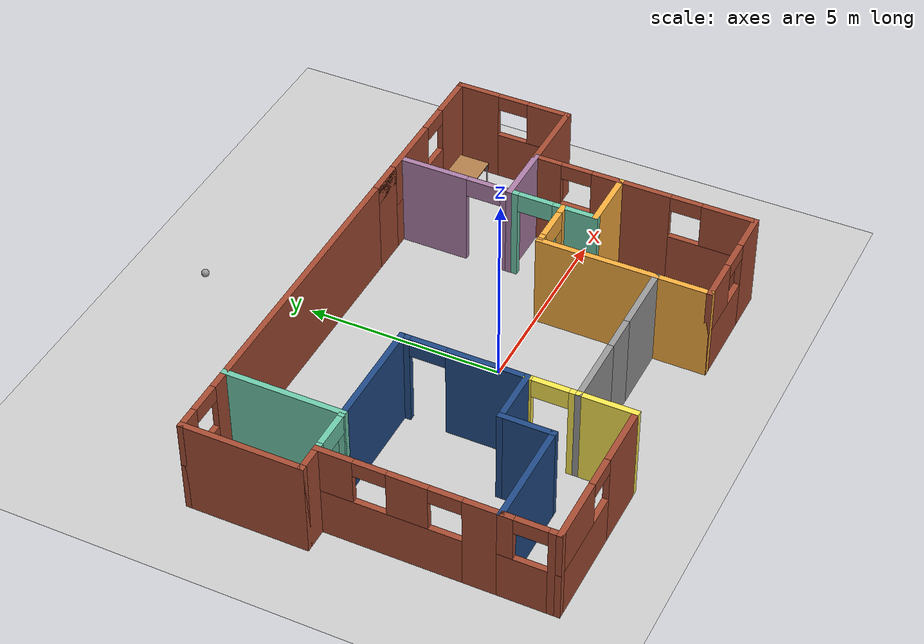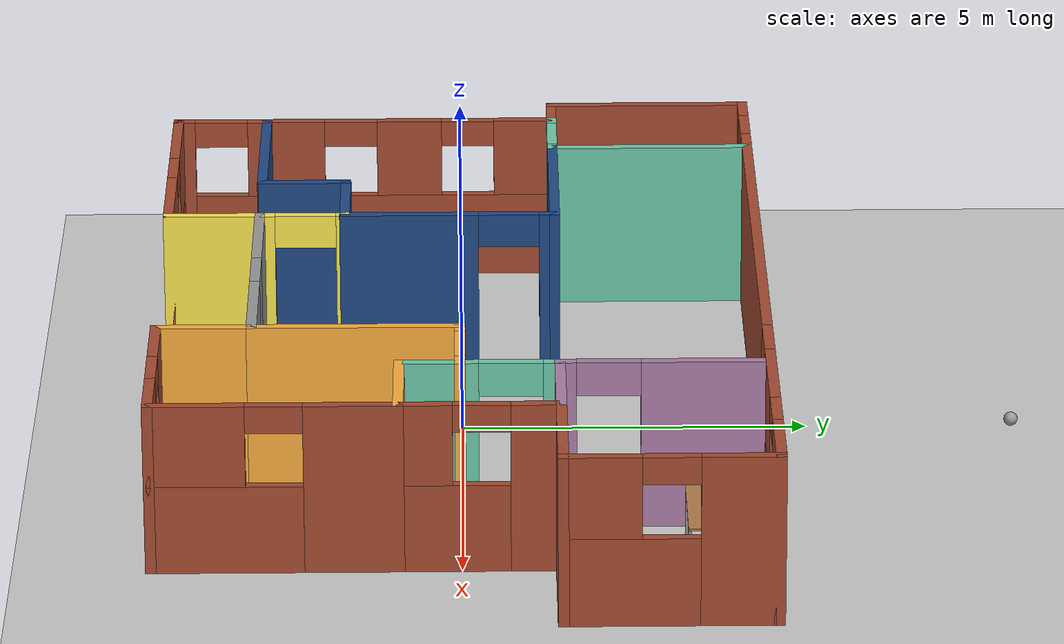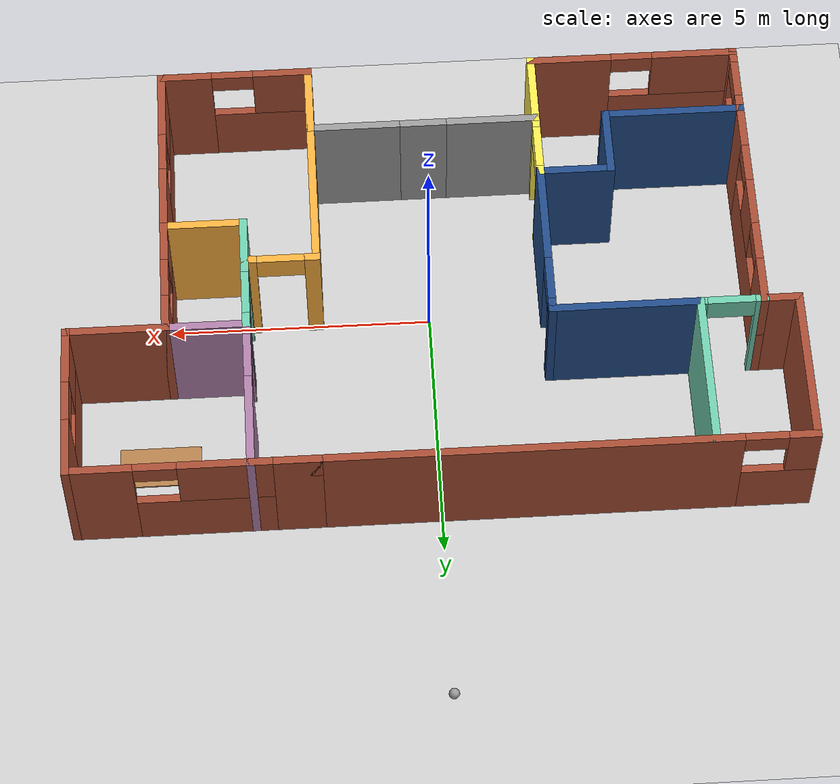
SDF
<sdf version="1.6">
 <world name="default">
  <model name="ground_plane">
   <static>1</static>
   <link name="link">
    <collision name="collision">
     <geometry><plane><normal>0 0 1</normal><size>100 100</size></plane></geometry>
     <surface>
      <contact><collide_bitmask>65535</collide_bitmask></contact>
      <friction><ode><mu>100</mu><mu2>50</mu2></ode></friction>
     </surface>
    </collision>
    <visual name="visual">
     <cast_shadows>0</cast_shadows>
     <geometry><plane><normal>0 0 1</normal><size>100 100</size></plane></geometry>
     <material>
      <script><uri>file://media/materials/scripts/gazebo.material</uri><name>Gazebo/Grey</name></script>
     </material>
    </visual>
   </link>
  </model>
  <model name="Building">
   <link name="Wall_103">
    <collision name="Wall_103_Collision">
     <geometry><box><size>3.1 0.15 2.5</size></box></geometry>
     <pose>0 0 1.25 0 -0 0</pose>
    </collision>
    <visual name="Wall_103_Visual">
     <pose>0 0 1.25 0 -0 0</pose>
     <geometry><box><size>3.1 0.15 2.5</size></box></geometry>
     <material>
      <script><uri>file://media/materials/scripts/gazebo.material</uri><name>Gazebo/Grey</name></script>
      <ambient>0.435294 0.796078 0.67451 1</ambient>
     </material>
     <meta><layer>0</layer></meta>
    </visual>
    <pose>-4.985 2.85 0 0 -0 1.5708</pose>
   </link>
   <link name="Wall_110">
    <pose>-2.225 -0.174996 0 0 -0 1.5708</pose>
    <visual name="Wall_110_Visual_0">
     <pose>-0.600862 0 1.25 0 -0 0</pose>
     <geometry><box><size>2.04828 0.15 2.5</size></box></geometry>
     <material>
      <script><uri>file://media/materials/scripts/gazebo.material</uri><name>Gazebo/Grey</name></script>
      <ambient>0.12549 0.290196 0.529412 1</ambient>
     </material>
     <meta><layer>0</layer></meta>
    </visual>
    <collision name="Wall_110_Collision_0">
     <geometry><box><size>2.04828 0.15 2.5</size></box></geometry>
     <pose>-0.600862 0 1.25 0 -0 0</pose>
    </collision>
    <visual name="Wall_110_Visual_1">
     <pose>1.47414 0 1.25 0 -0 0</pose>
     <geometry><box><size>0.301723 0.15 2.5</size></box></geometry>
     <material>
      <script><uri>file://media/materials/scripts/gazebo.material</uri><name>Gazebo/Grey</name></script>
      <ambient>0.12549 0.290196 0.529412 1</ambient>
     </material>
     <meta><layer>0</layer></meta>
    </visual>
    <collision name="Wall_110_Collision_1">
     <geometry><box><size>0.301723 0.15 2.5</size></box></geometry>
     <pose>1.47414 0 1.25 0 -0 0</pose>
    </collision>
    <visual name="Wall_110_Visual_2">
     <pose>0.873277 0 2.25 0 -0 0</pose>
     <geometry><box><size>0.9 0.15 0.5</size></box></geometry>
     <material>
      <script><uri>file://media/materials/scripts/gazebo.material</uri><name>Gazebo/Grey</name></script>
      <ambient>0.12549 0.290196 0.529412 1</ambient>
     </material>
     <meta><layer>0</layer></meta>
    </visual>
    <collision name="Wall_110_Collision_2">
     <geometry><box><size>0.9 0.15 0.5</size></box></geometry>
     <pose>0.873277 0 2.25 0 -0 0</pose>
    </collision>
   </link>
   <link name="Wall_112">
    <collision name="Wall_112_Collision">
     <geometry><box><size>2.91 0.15 2.5</size></box></geometry>
     <pose>0 0 1.25 0 -0 0</pose>
    </collision>
    <visual name="Wall_112_Visual">
     <pose>0 0 1.25 0 -0 0</pose>
     <geometry><box><size>2.91 0.15 2.5</size></box></geometry>
     <material>
      <script><uri>file://media/materials/scripts/gazebo.material</uri><name>Gazebo/Grey</name></script>
      <ambient>0.12549 0.290196 0.529412 1</ambient>
     </material>
     <meta><layer>0</layer></meta>
    </visual>
    <pose>-3.605 1.375 0 0 -0 3.14159</pose>
   </link>
   <link name="Wall_115">
    <pose>-2.225 -2.35 0 0 -0 1.5708</pose>
    <visual name="Wall_115_Visual_0">
     <pose>-0.551181 0 1.25 0 -0 0</pose>
     <geometry><box><size>0.297638 0.15 2.5</size></box></geometry>
     <material>
      <script><uri>file://media/materials/scripts/gazebo.material</uri><name>Gazebo/Grey</name></script>
      <ambient>0.988235 0.913725 0.309804 1</ambient>
     </material>
     <meta><layer>0</layer></meta>
    </visual>
    <collision name="Wall_115_Collision_0">
     <geometry><box><size>0.297638 0.15 2.5</size></box></geometry>
     <pose>-0.551181 0 1.25 0 -0 0</pose>
    </collision>
    <visual name="Wall_115_Visual_1">
     <pose>0.598819 0 1.25 0 -0 0</pose>
     <geometry><box><size>0.202362 0.15 2.5</size></box></geometry>
     <material>
      <script><uri>file://media/materials/scripts/gazebo.material</uri><name>Gazebo/Grey</name></script>
      <ambient>0.988235 0.913725 0.309804 1</ambient>
     </material>
     <meta><layer>0</layer></meta>
    </visual>
    <collision name="Wall_115_Collision_1">
     <geometry><box><size>0.202362 0.15 2.5</size></box></geometry>
     <pose>0.598819 0 1.25 0 -0 0</pose>
    </collision>
    <visual name="Wall_115_Visual_2">
     <pose>0.047638 0 2.25 0 -0 0</pose>
     <geometry><box><size>0.9 0.15 0.5</size></box></geometry>
     <material>
      <script><uri>file://media/materials/scripts/gazebo.material</uri><name>Gazebo/Grey</name></script>
      <ambient>0.988235 0.913725 0.309804 1</ambient>
     </material>
     <meta><layer>0</layer></meta>
    </visual>
    <collision name="Wall_115_Collision_2">
     <geometry><box><size>0.9 0.15 0.5</size></box></geometry>
     <pose>0.047638 0 2.25 0 -0 0</pose>
    </collision>
   </link>
   <link name="Wall_116">
    <collision name="Wall_116_Collision">
     <geometry><box><size>1.5 0.15 2.5</size></box></geometry>
     <pose>0 0 1.25 0 -0 0</pose>
    </collision>
    <visual name="Wall_116_Visual">
     <pose>0 0 1.25 0 -0 0</pose>
     <geometry><box><size>1.5 0.15 2.5</size></box></geometry>
     <material>
      <script><uri>file://media/materials/scripts/gazebo.material</uri><name>Gazebo/Grey</name></script>
      <ambient>0.12549 0.290196 0.529412 1</ambient>
     </material>
     <meta><layer>0</layer></meta>
    </visual>
    <pose>-2.9 -1.725 0 0 -0 3.14159</pose>
   </link>
   <link name="Wall_12">
    <pose>3.475 2.85 0 0 -0 1.5708</pose>
    <visual name="Wall_12_Visual_0">
     <pose>-1.3963 0 1.25 0 -0 0</pose>
     <geometry><box><size>0.307393 0.15 2.5</size></box></geometry>
     <material>
      <script><uri>file://media/materials/scripts/gazebo.material</uri><name>Gazebo/Grey</name></script>
      <ambient>0.678431 0.498039 0.658824 1</ambient>
     </material>
     <meta><layer>0</layer></meta>
    </visual>
    <collision name="Wall_12_Collision_0">
     <geometry><box><size>0.307393 0.15 2.5</size></box></geometry>
     <pose>-1.3963 0 1.25 0 -0 0</pose>
    </collision>
    <visual name="Wall_12_Visual_1">
     <pose>0.603697 0 1.25 0 -0 0</pose>
     <geometry><box><size>1.89261 0.15 2.5</size></box></geometry>
     <material>
      <script><uri>file://media/materials/scripts/gazebo.material</uri><name>Gazebo/Grey</name></script>
      <ambient>0.678431 0.498039 0.658824 1</ambient>
     </material>
     <meta><layer>0</layer></meta>
    </visual>
    <collision name="Wall_12_Collision_1">
     <geometry><box><size>1.89261 0.15 2.5</size></box></geometry>
     <pose>0.603697 0 1.25 0 -0 0</pose>
    </collision>
    <visual name="Wall_12_Visual_2">
     <pose>-0.792607 0 2.25 0 -0 0</pose>
     <geometry><box><size>0.9 0.15 0.5</size></box></geometry>
     <material>
      <script><uri>file://media/materials/scripts/gazebo.material</uri><name>Gazebo/Grey</name></script>
      <ambient>0.678431 0.498039 0.658824 1</ambient>
     </material>
     <meta><layer>0</layer></meta>
    </visual>
    <collision name="Wall_12_Collision_2">
     <geometry><box><size>0.9 0.15 0.5</size></box></geometry>
     <pose>-0.792607 0 2.25 0 -0 0</pose>
    </collision>
   </link>
   <link name="Wall_121">
    <collision name="Wall_121_Collision">
     <geometry><box><size>1.4 0.15 2.5</size></box></geometry>
     <pose>0 0 1.25 0 -0 0</pose>
    </collision>
    <visual name="Wall_121_Visual">
     <pose>0 0 1.25 0 -0 0</pose>
     <geometry><box><size>1.4 0.15 2.5</size></box></geometry>
     <material>
      <script><uri>file://media/materials/scripts/gazebo.material</uri><name>Gazebo/Grey</name></script>
      <ambient>0.12549 0.290196 0.529412 1</ambient>
     </material>
     <meta><layer>0</layer></meta>
    </visual>
    <pose>-3.575 -2.35 0 0 -0 -1.5708</pose>
   </link>
   <link name="Wall_123">
    <collision name="Wall_123_Collision">
     <geometry><box><size>2.76 0.15 2.5</size></box></geometry>
     <pose>0 0 1.25 0 -0 0</pose>
    </collision>
    <visual name="Wall_123_Visual">
     <pose>0 0 1.25 0 -0 0</pose>
     <geometry><box><size>2.76 0.15 2.5</size></box></geometry>
     <material>
      <script><uri>file://media/materials/scripts/gazebo.material</uri><name>Gazebo/Grey</name></script>
      <ambient>0.12549 0.290196 0.529412 1</ambient>
     </material>
     <meta><layer>0</layer></meta>
    </visual>
    <pose>-4.88 -2.97499 0 0 -0 3.14159</pose>
   </link>
   <link name="Wall_125">
    <pose>-6.185 -3.65 0 0 -0 1.5708</pose>
    <visual name="Wall_125_Visual_0">
     <pose>-0.587283 0 1.25 0 -0 0</pose>
     <geometry><box><size>0.325434 0.15 2.5</size></box></geometry>
     <material>
      <script><uri>file://media/materials/scripts/gazebo.material</uri><name>Gazebo/Bricks</name></script>
      <ambient>1 1 1 1</ambient>
     </material>
     <meta><layer>0</layer></meta>
    </visual>
    <collision name="Wall_125_Collision_0">
     <geometry><box><size>0.325434 0.15 2.5</size></box></geometry>
     <pose>-0.587283 0 1.25 0 -0 0</pose>
    </collision>
    <visual name="Wall_125_Visual_1">
     <pose>0.162717 0 0.65 0 -0 0</pose>
     <geometry><box><size>1.17457 0.15 1.3</size></box></geometry>
     <material>
      <script><uri>file://media/materials/scripts/gazebo.material</uri><name>Gazebo/Bricks</name></script>
      <ambient>1 1 1 1</ambient>
     </material>
     <meta><layer>0</layer></meta>
    </visual>
    <collision name="Wall_125_Collision_1">
     <geometry><box><size>1.17457 0.15 1.3</size></box></geometry>
     <pose>0.162717 0 0.65 0 -0 0</pose>
    </collision>
    <visual name="Wall_125_Visual_2">
     <pose>0.562717 0 1.9 0 -0 0</pose>
     <geometry><box><size>0.374566 0.15 1.2</size></box></geometry>
     <material>
      <script><uri>file://media/materials/scripts/gazebo.material</uri><name>Gazebo/Bricks</name></script>
      <ambient>1 1 1 1</ambient>
     </material>
     <meta><layer>0</layer></meta>
    </visual>
    <collision name="Wall_125_Collision_2">
     <geometry><box><size>0.374566 0.15 1.2</size></box></geometry>
     <pose>0.562717 0 1.9 0 -0 0</pose>
    </collision>
    <visual name="Wall_125_Visual_3">
     <pose>-0.024566 0 2.3 0 -0 0</pose>
     <geometry><box><size>0.8 0.15 0.4</size></box></geometry>
     <material>
      <script><uri>file://media/materials/scripts/gazebo.material</uri><name>Gazebo/Bricks</name></script>
      <ambient>1 1 1 1</ambient>
     </material>
     <meta><layer>0</layer></meta>
    </visual>
    <collision name="Wall_125_Collision_3">
     <geometry><box><size>0.8 0.15 0.4</size></box></geometry>
     <pose>-0.024566 0 2.3 0 -0 0</pose>
    </collision>
   </link>
   <link name="Wall_128">
    <pose>-6.185 -0.799996 0 0 -0 1.5708</pose>
    <visual name="Wall_128_Visual_0">
     <pose>-1.77232 0 1.25 0 -0 0</pose>
     <geometry><box><size>0.955364 0.15 2.5</size></box></geometry>
     <material>
      <script><uri>file://media/materials/scripts/gazebo.material</uri><name>Gazebo/Bricks</name></script>
      <ambient>1 1 1 1</ambient>
     </material>
     <meta><layer>0</layer></meta>
    </visual>
    <collision name="Wall_128_Collision_0">
     <geometry><box><size>0.955364 0.15 2.5</size></box></geometry>
     <pose>-1.77232 0 1.25 0 -0 0</pose>
    </collision>
    <visual name="Wall_128_Visual_1">
     <pose>0.477682 0 0.65 0 -0 0</pose>
     <geometry><box><size>3.54464 0.15 1.3</size></box></geometry>
     <material>
      <script><uri>file://media/materials/scripts/gazebo.material</uri><name>Gazebo/Bricks</name></script>
      <ambient>1 1 1 1</ambient>
     </material>
     <meta><layer>0</layer></meta>
    </visual>
    <collision name="Wall_128_Collision_1">
     <geometry><box><size>3.54464 0.15 1.3</size></box></geometry>
     <pose>0.477682 0 0.65 0 -0 0</pose>
    </collision>
    <visual name="Wall_128_Visual_2">
     <pose>-0.000839 0 1.9 0 -0 0</pose>
     <geometry><box><size>0.987594 0.15 1.2</size></box></geometry>
     <material>
      <script><uri>file://media/materials/scripts/gazebo.material</uri><name>Gazebo/Bricks</name></script>
      <ambient>1 1 1 1</ambient>
     </material>
     <meta><layer>0</layer></meta>
    </visual>
    <collision name="Wall_128_Collision_2">
     <geometry><box><size>0.987594 0.15 1.2</size></box></geometry>
     <pose>-0.000839 0 1.9 0 -0 0</pose>
    </collision>
    <visual name="Wall_128_Visual_3">
     <pose>1.77148 0 1.9 0 -0 0</pose>
     <geometry><box><size>0.957042 0.15 1.2</size></box></geometry>
     <material>
      <script><uri>file://media/materials/scripts/gazebo.material</uri><name>Gazebo/Bricks</name></script>
      <ambient>1 1 1 1</ambient>
     </material>
     <meta><layer>0</layer></meta>
    </visual>
    <collision name="Wall_128_Collision_3">
     <geometry><box><size>0.957042 0.15 1.2</size></box></geometry>
     <pose>1.77148 0 1.9 0 -0 0</pose>
    </collision>
    <visual name="Wall_128_Visual_4">
     <pose>-0.894636 0 2.3 0 -0 0</pose>
     <geometry><box><size>0.8 0.15 0.4</size></box></geometry>
     <material>
      <script><uri>file://media/materials/scripts/gazebo.material</uri><name>Gazebo/Bricks</name></script>
      <ambient>1 1 1 1</ambient>
     </material>
     <meta><layer>0</layer></meta>
    </visual>
    <collision name="Wall_128_Collision_4">
     <geometry><box><size>0.8 0.15 0.4</size></box></geometry>
     <pose>-0.894636 0 2.3 0 -0 0</pose>
    </collision>
    <visual name="Wall_128_Visual_5">
     <pose>0.892958 0 2.3 0 -0 0</pose>
     <geometry><box><size>0.8 0.15 0.4</size></box></geometry>
     <material>
      <script><uri>file://media/materials/scripts/gazebo.material</uri><name>Gazebo/Bricks</name></script>
      <ambient>1 1 1 1</ambient>
     </material>
     <meta><layer>0</layer></meta>
    </visual>
    <collision name="Wall_128_Collision_5">
     <geometry><box><size>0.8 0.15 0.4</size></box></geometry>
     <pose>0.892958 0 2.3 0 -0 0</pose>
    </collision>
   </link>
   <link name="Wall_130">
    <collision name="Wall_130_Collision">
     <geometry><box><size>1.65 0.15 2.5</size></box></geometry>
     <pose>0 0 1.25 0 -0 0</pose>
    </collision>
    <visual name="Wall_130_Visual">
     <pose>0 0 1.25 0 -0 0</pose>
     <geometry><box><size>1.65 0.15 2.5</size></box></geometry>
     <material>
      <script><uri>file://media/materials/scripts/gazebo.material</uri><name>Gazebo/Grey</name></script>
      <ambient>0.678431 0.498039 0.658824 1</ambient>
     </material>
     <meta><layer>0</layer></meta>
    </visual>
    <pose>4.225 1.375 0 0 -0 3.14159</pose>
   </link>
   <link name="Wall_132">
    <collision name="Wall_132_Collision">
     <geometry><box><size>1.5 0.15 2.5</size></box></geometry>
     <pose>0 0 1.25 0 -0 0</pose>
    </collision>
    <visual name="Wall_132_Visual">
     <pose>0 0 1.25 0 -0 0</pose>
     <geometry><box><size>1.5 0.15 2.5</size></box></geometry>
     <material>
      <script><uri>file://media/materials/scripts/gazebo.material</uri><name>Gazebo/Grey</name></script>
      <ambient>0.988235 0.686275 0.243137 1</ambient>
     </material>
     <meta><layer>0</layer></meta>
    </visual>
    <pose>2.125 -3.65 0 0 -0 1.5708</pose>
   </link>
   <link name="Wall_133">
    <collision name="Wall_133_Collision">
     <geometry><box><size>3.1 0.15 2.5</size></box></geometry>
     <pose>0 0 1.25 0 -0 0</pose>
    </collision>
    <visual name="Wall_133_Visual">
     <pose>0 0 1.25 0 -0 0</pose>
     <geometry><box><size>3.1 0.15 2.5</size></box></geometry>
     <material>
      <script><uri>file://media/materials/scripts/gazebo.material</uri><name>Gazebo/Grey</name></script>
      <ambient>0.988235 0.686275 0.243137 1</ambient>
     </material>
     <meta><layer>0</layer></meta>
    </visual>
    <pose>2.125 -1.5 0 0 -0 1.5708</pose>
   </link>
   <link name="Wall_137">
    <collision name="Wall_137_Collision">
     <geometry><box><size>0.79 0.15 2.5</size></box></geometry>
     <pose>0 0 1.25 0 -0 0</pose>
    </collision>
    <visual name="Wall_137_Visual">
     <pose>0 0 1.25 0 -0 0</pose>
     <geometry><box><size>0.79 0.15 2.5</size></box></geometry>
     <material>
      <script><uri>file://media/materials/scripts/gazebo.material</uri><name>Gazebo/Bricks</name></script>
      <ambient>1 1 1 1</ambient>
     </material>
     <meta><layer>0</layer></meta>
    </visual>
    <pose>-6.505 1.375 0 0 -0 0</pose>
   </link>
   <link name="Wall_138">
    <pose>-5.585 1.375 0 0 -0 0</pose>
    <visual name="Wall_138_Visual_0">
     <pose>-0.55259 0 1.25 0 -0 0</pose>
     <geometry><box><size>0.244819 0.15 2.5</size></box></geometry>
     <material>
      <script><uri>file://media/materials/scripts/gazebo.material</uri><name>Gazebo/Grey</name></script>
      <ambient>0.435294 0.796078 0.67451 1</ambient>
     </material>
     <meta><layer>0</layer></meta>
    </visual>
    <collision name="Wall_138_Collision_0">
     <geometry><box><size>0.244819 0.15 2.5</size></box></geometry>
     <pose>-0.55259 0 1.25 0 -0 0</pose>
    </collision>
    <visual name="Wall_138_Visual_1">
     <pose>0.57241 0 1.25 0 -0 0</pose>
     <geometry><box><size>0.205181 0.15 2.5</size></box></geometry>
     <material>
      <script><uri>file://media/materials/scripts/gazebo.material</uri><name>Gazebo/Grey</name></script>
      <ambient>0.435294 0.796078 0.67451 1</ambient>
     </material>
     <meta><layer>0</layer></meta>
    </visual>
    <collision name="Wall_138_Collision_1">
     <geometry><box><size>0.205181 0.15 2.5</size></box></geometry>
     <pose>0.57241 0 1.25 0 -0 0</pose>
    </collision>
    <visual name="Wall_138_Visual_2">
     <pose>0.019819 0 2.25 0 -0 0</pose>
     <geometry><box><size>0.9 0.15 0.5</size></box></geometry>
     <material>
      <script><uri>file://media/materials/scripts/gazebo.material</uri><name>Gazebo/Grey</name></script>
      <ambient>0.435294 0.796078 0.67451 1</ambient>
     </material>
     <meta><layer>0</layer></meta>
    </visual>
    <collision name="Wall_138_Collision_2">
     <geometry><box><size>0.9 0.15 0.5</size></box></geometry>
     <pose>0.019819 0 2.25 0 -0 0</pose>
    </collision>
   </link>
   <link name="Wall_22">
    <pose>3.475 0.250004 0 0 -0 -1.5708</pose>
    <visual name="Wall_22_Visual_0">
     <pose>-1.0443 0 1.25 0 -0 0</pose>
     <geometry><box><size>0.311394 0.15 2.5</size></box></geometry>
     <material>
      <script><uri>file://media/materials/scripts/gazebo.material</uri><name>Gazebo/Grey</name></script>
      <ambient>0.435294 0.796078 0.67451 1</ambient>
     </material>
     <meta><layer>0</layer></meta>
    </visual>
    <collision name="Wall_22_Collision_0">
     <geometry><box><size>0.311394 0.15 2.5</size></box></geometry>
     <pose>-1.0443 0 1.25 0 -0 0</pose>
    </collision>
    <visual name="Wall_22_Visual_1">
     <pose>0.605697 0 1.25 0 -0 0</pose>
     <geometry><box><size>1.18861 0.15 2.5</size></box></geometry>
     <material>
      <script><uri>file://media/materials/scripts/gazebo.material</uri><name>Gazebo/Grey</name></script>
      <ambient>0.435294 0.796078 0.67451 1</ambient>
     </material>
     <meta><layer>0</layer></meta>
    </visual>
    <collision name="Wall_22_Collision_1">
     <geometry><box><size>1.18861 0.15 2.5</size></box></geometry>
     <pose>0.605697 0 1.25 0 -0 0</pose>
    </collision>
    <visual name="Wall_22_Visual_2">
     <pose>-0.438606 0 2.25 0 -0 0</pose>
     <geometry><box><size>0.9 0.15 0.5</size></box></geometry>
     <material>
      <script><uri>file://media/materials/scripts/gazebo.material</uri><name>Gazebo/Grey</name></script>
      <ambient>0.435294 0.796078 0.67451 1</ambient>
     </material>
     <meta><layer>0</layer></meta>
    </visual>
    <collision name="Wall_22_Collision_2">
     <geometry><box><size>0.9 0.15 0.5</size></box></geometry>
     <pose>-0.438606 0 2.25 0 -0 0</pose>
    </collision>
   </link>
   <link name="Wall_27">
    <collision name="Wall_27_Collision">
     <geometry><box><size>2 0.15 2.5</size></box></geometry>
     <pose>0 0 1.25 0 -0 0</pose>
    </collision>
    <visual name="Wall_27_Visual">
     <pose>0 0 1.25 0 -0 0</pose>
     <geometry><box><size>2 0.15 2.5</size></box></geometry>
     <material>
      <script><uri>file://media/materials/scripts/gazebo.material</uri><name>Gazebo/Bricks</name></script>
      <ambient>1 1 1 1</ambient>
     </material>
     <meta><layer>0</layer></meta>
    </visual>
    <pose>5.9 1.375 0 0 -0 3.14159</pose>
   </link>
   <link name="Wall_28">
    <pose>4.975 0.250004 0 0 -0 -1.5708</pose>
    <visual name="Wall_28_Visual_0">
     <pose>-0.81199 0 1.25 0 -0 0</pose>
     <geometry><box><size>0.77602 0.15 2.5</size></box></geometry>
     <material>
      <script><uri>file://media/materials/scripts/gazebo.material</uri><name>Gazebo/Bricks</name></script>
      <ambient>1 1 1 1</ambient>
     </material>
     <meta><layer>0</layer></meta>
    </visual>
    <collision name="Wall_28_Collision_0">
     <geometry><box><size>0.77602 0.15 2.5</size></box></geometry>
     <pose>-0.81199 0 1.25 0 -0 0</pose>
    </collision>
    <visual name="Wall_28_Visual_1">
     <pose>0.38801 0 0.65 0 -0 0</pose>
     <geometry><box><size>1.62398 0.15 1.3</size></box></geometry>
     <material>
      <script><uri>file://media/materials/scripts/gazebo.material</uri><name>Gazebo/Bricks</name></script>
      <ambient>1 1 1 1</ambient>
     </material>
     <meta><layer>0</layer></meta>
    </visual>
    <collision name="Wall_28_Collision_1">
     <geometry><box><size>1.62398 0.15 1.3</size></box></geometry>
     <pose>0.38801 0 0.65 0 -0 0</pose>
    </collision>
    <visual name="Wall_28_Visual_2">
     <pose>0.78801 0 1.9 0 -0 0</pose>
     <geometry><box><size>0.82398 0.15 1.2</size></box></geometry>
     <material>
      <script><uri>file://media/materials/scripts/gazebo.material</uri><name>Gazebo/Bricks</name></script>
      <ambient>1 1 1 1</ambient>
     </material>
     <meta><layer>0</layer></meta>
    </visual>
    <collision name="Wall_28_Collision_2">
     <geometry><box><size>0.82398 0.15 1.2</size></box></geometry>
     <pose>0.78801 0 1.9 0 -0 0</pose>
    </collision>
    <visual name="Wall_28_Visual_3">
     <pose>-0.02398 0 2.3 0 -0 0</pose>
     <geometry><box><size>0.8 0.15 0.4</size></box></geometry>
     <material>
      <script><uri>file://media/materials/scripts/gazebo.material</uri><name>Gazebo/Bricks</name></script>
      <ambient>1 1 1 1</ambient>
     </material>
     <meta><layer>0</layer></meta>
    </visual>
    <collision name="Wall_28_Collision_3">
     <geometry><box><size>0.8 0.15 0.4</size></box></geometry>
     <pose>-0.02398 0 2.3 0 -0 0</pose>
    </collision>
   </link>
   <link name="Wall_31">
    <collision name="Wall_31_Collision">
     <geometry><box><size>1.65 0.15 2.5</size></box></geometry>
     <pose>0 0 1.25 0 -0 0</pose>
    </collision>
    <visual name="Wall_31_Visual">
     <pose>0 0 1.25 0 -0 0</pose>
     <geometry><box><size>1.65 0.15 2.5</size></box></geometry>
     <material>
      <script><uri>file://media/materials/scripts/gazebo.material</uri><name>Gazebo/Grey</name></script>
      <ambient>0.988235 0.686275 0.243137 1</ambient>
     </material>
     <meta><layer>0</layer></meta>
    </visual>
    <pose>4.225 -0.874996 0 0 -0 0</pose>
   </link>
   <link name="Wall_33">
    <pose>4.975 -2.59999 0 0 -0 -1.5708</pose>
    <visual name="Wall_33_Visual_0">
     <pose>-1.10578 0 1.25 0 -0 0</pose>
     <geometry><box><size>1.38843 0.15 2.5</size></box></geometry>
     <material>
      <script><uri>file://media/materials/scripts/gazebo.material</uri><name>Gazebo/Bricks</name></script>
      <ambient>1 1 1 1</ambient>
     </material>
     <meta><layer>0</layer></meta>
    </visual>
    <collision name="Wall_33_Collision_0">
     <geometry><box><size>1.38843 0.15 2.5</size></box></geometry>
     <pose>-1.10578 0 1.25 0 -0 0</pose>
    </collision>
    <visual name="Wall_33_Visual_1">
     <pose>0.694217 0 0.65 0 -0 0</pose>
     <geometry><box><size>2.21157 0.15 1.3</size></box></geometry>
     <material>
      <script><uri>file://media/materials/scripts/gazebo.material</uri><name>Gazebo/Bricks</name></script>
      <ambient>1 1 1 1</ambient>
     </material>
     <meta><layer>0</layer></meta>
    </visual>
    <collision name="Wall_33_Collision_1">
     <geometry><box><size>2.21157 0.15 1.3</size></box></geometry>
     <pose>0.694217 0 0.65 0 -0 0</pose>
    </collision>
    <visual name="Wall_33_Visual_2">
     <pose>1.09422 0 1.9 0 -0 0</pose>
     <geometry><box><size>1.41157 0.15 1.2</size></box></geometry>
     <material>
      <script><uri>file://media/materials/scripts/gazebo.material</uri><name>Gazebo/Bricks</name></script>
      <ambient>1 1 1 1</ambient>
     </material>
     <meta><layer>0</layer></meta>
    </visual>
    <collision name="Wall_33_Collision_2">
     <geometry><box><size>1.41157 0.15 1.2</size></box></geometry>
     <pose>1.09422 0 1.9 0 -0 0</pose>
    </collision>
    <visual name="Wall_33_Visual_3">
     <pose>-0.011567 0 2.3 0 -0 0</pose>
     <geometry><box><size>0.8 0.15 0.4</size></box></geometry>
     <material>
      <script><uri>file://media/materials/scripts/gazebo.material</uri><name>Gazebo/Bricks</name></script>
      <ambient>1 1 1 1</ambient>
     </material>
     <meta><layer>0</layer></meta>
    </visual>
    <collision name="Wall_33_Collision_3">
     <geometry><box><size>0.8 0.15 0.4</size></box></geometry>
     <pose>-0.011567 0 2.3 0 -0 0</pose>
    </collision>
   </link>
   <link name="Wall_4">
    <pose>-0 4.325 0 0 -0 3.14159</pose>
    <visual name="Wall_4_Visual_0">
     <pose>-6.2573 0 1.25 0 -0 0</pose>
     <geometry><box><size>1.2854 0.15 2.5</size></box></geometry>
     <material>
      <script><uri>file://media/materials/scripts/gazebo.material</uri><name>Gazebo/Bricks</name></script>
      <ambient>1 1 1 1</ambient>
     </material>
     <meta><layer>0</layer></meta>
    </visual>
    <collision name="Wall_4_Collision_0">
     <geometry><box><size>1.2854 0.15 2.5</size></box></geometry>
     <pose>-6.2573 0 1.25 0 -0 0</pose>
    </collision>
    <visual name="Wall_4_Visual_1">
     <pose>1.66661 0 1.25 0 -0 0</pose>
     <geometry><box><size>7.68067 0.15 2.5</size></box></geometry>
     <material>
      <script><uri>file://media/materials/scripts/gazebo.material</uri><name>Gazebo/Bricks</name></script>
      <ambient>1 1 1 1</ambient>
     </material>
     <meta><layer>0</layer></meta>
    </visual>
    <collision name="Wall_4_Collision_1">
     <geometry><box><size>7.68067 0.15 2.5</size></box></geometry>
     <pose>1.66661 0 1.25 0 -0 0</pose>
    </collision>
    <visual name="Wall_4_Visual_2">
     <pose>-4.34416 0 0.65 0 -0 0</pose>
     <geometry><box><size>2.54088 0.15 1.3</size></box></geometry>
     <material>
      <script><uri>file://media/materials/scripts/gazebo.material</uri><name>Gazebo/Bricks</name></script>
      <ambient>1 1 1 1</ambient>
     </material>
     <meta><layer>0</layer></meta>
    </visual>
    <collision name="Wall_4_Collision_2">
     <geometry><box><size>2.54088 0.15 1.3</size></box></geometry>
     <pose>-4.34416 0 0.65 0 -0 0</pose>
    </collision>
    <visual name="Wall_4_Visual_3">
     <pose>6.20347 0 0.65 0 -0 0</pose>
     <geometry><box><size>1.39305 0.15 1.3</size></box></geometry>
     <material>
      <script><uri>file://media/materials/scripts/gazebo.material</uri><name>Gazebo/Bricks</name></script>
      <ambient>1 1 1 1</ambient>
     </material>
     <meta><layer>0</layer></meta>
    </visual>
    <collision name="Wall_4_Collision_3">
     <geometry><box><size>1.39305 0.15 1.3</size></box></geometry>
     <pose>6.20347 0 0.65 0 -0 0</pose>
    </collision>
    <visual name="Wall_4_Visual_4">
     <pose>-3.94416 0 1.9 0 -0 0</pose>
     <geometry><box><size>1.74088 0.15 1.2</size></box></geometry>
     <material>
      <script><uri>file://media/materials/scripts/gazebo.material</uri><name>Gazebo/Bricks</name></script>
      <ambient>1 1 1 1</ambient>
     </material>
     <meta><layer>0</layer></meta>
    </visual>
    <collision name="Wall_4_Collision_4">
     <geometry><box><size>1.74088 0.15 1.2</size></box></geometry>
     <pose>-3.94416 0 1.9 0 -0 0</pose>
    </collision>
    <visual name="Wall_4_Visual_5">
     <pose>-3.94416 0 1.9 0 -0 0</pose>
     <geometry><box><size>1.74088 0.15 1.2</size></box></geometry>
     <material>
      <script><uri>file://media/materials/scripts/gazebo.material</uri><name>Gazebo/Bricks</name></script>
      <ambient>1 1 1 1</ambient>
     </material>
     <meta><layer>0</layer></meta>
    </visual>
    <collision name="Wall_4_Collision_5">
     <geometry><box><size>1.74088 0.15 1.2</size></box></geometry>
     <pose>-3.94416 0 1.9 0 -0 0</pose>
    </collision>
    <visual name="Wall_4_Visual_6">
     <pose>6.60347 0 1.9 0 -0 0</pose>
     <geometry><box><size>0.593052 0.15 1.2</size></box></geometry>
     <material>
      <script><uri>file://media/materials/scripts/gazebo.material</uri><name>Gazebo/Bricks</name></script>
      <ambient>1 1 1 1</ambient>
     </material>
     <meta><layer>0</layer></meta>
    </visual>
    <collision name="Wall_4_Collision_6">
     <geometry><box><size>0.593052 0.15 1.2</size></box></geometry>
     <pose>6.60347 0 1.9 0 -0 0</pose>
    </collision>
    <visual name="Wall_4_Visual_7">
     <pose>-2.62372 0 2.25 0 -0 0</pose>
     <geometry><box><size>0.9 0.15 0.5</size></box></geometry>
     <material>
      <script><uri>file://media/materials/scripts/gazebo.material</uri><name>Gazebo/Bricks</name></script>
      <ambient>1 1 1 1</ambient>
     </material>
     <meta><layer>0</layer></meta>
    </visual>
    <collision name="Wall_4_Collision_7">
     <geometry><box><size>0.9 0.15 0.5</size></box></geometry>
     <pose>-2.62372 0 2.25 0 -0 0</pose>
    </collision>
    <visual name="Wall_4_Visual_8">
     <pose>-2.62372 0 1.25 0 -0 0</pose>
     <geometry><box><size>0.9 0.15 2.5</size></box></geometry>
     <material>
      <script><uri>file://media/materials/scripts/gazebo.material</uri><name>Gazebo/Bricks</name></script>
      <ambient>1 1 1 1</ambient>
     </material>
     <meta><layer>0</layer></meta>
    </visual>
    <collision name="Wall_4_Collision_8">
     <geometry><box><size>0.9 0.15 2.5</size></box></geometry>
     <pose>-2.62372 0 1.25 0 -0 0</pose>
    </collision>
    <visual name="Wall_4_Visual_9">
     <pose>-5.2146 0 2.3 0 -0 0</pose>
     <geometry><box><size>0.8 0.15 0.4</size></box></geometry>
     <material>
      <script><uri>file://media/materials/scripts/gazebo.material</uri><name>Gazebo/Bricks</name></script>
      <ambient>1 1 1 1</ambient>
     </material>
     <meta><layer>0</layer></meta>
    </visual>
    <collision name="Wall_4_Collision_9">
     <geometry><box><size>0.8 0.15 0.4</size></box></geometry>
     <pose>-5.2146 0 2.3 0 -0 0</pose>
    </collision>
    <visual name="Wall_4_Visual_10">
     <pose>5.90695 0 2.3 0 -0 0</pose>
     <geometry><box><size>0.8 0.15 0.4</size></box></geometry>
     <material>
      <script><uri>file://media/materials/scripts/gazebo.material</uri><name>Gazebo/Bricks</name></script>
      <ambient>1 1 1 1</ambient>
     </material>
     <meta><layer>0</layer></meta>
    </visual>
    <collision name="Wall_4_Collision_10">
     <geometry><box><size>0.8 0.15 0.4</size></box></geometry>
     <pose>5.90695 0 2.3 0 -0 0</pose>
    </collision>
   </link>
   <link name="Wall_40">
    <pose>2.8 -0.024996 0 0 -0 3.14159</pose>
    <visual name="Wall_40_Visual_0">
     <pose>-0.597696 0 1.25 0 -0 0</pose>
     <geometry><box><size>0.304607 0.15 2.5</size></box></geometry>
     <material>
      <script><uri>file://media/materials/scripts/gazebo.material</uri><name>Gazebo/Grey</name></script>
      <ambient>0.988235 0.686275 0.243137 1</ambient>
     </material>
     <meta><layer>0</layer></meta>
    </visual>
    <collision name="Wall_40_Collision_0">
     <geometry><box><size>0.304607 0.15 2.5</size></box></geometry>
     <pose>-0.597696 0 1.25 0 -0 0</pose>
    </collision>
    <visual name="Wall_40_Visual_1">
     <pose>0.602304 0 1.25 0 -0 0</pose>
     <geometry><box><size>0.295393 0.15 2.5</size></box></geometry>
     <material>
      <script><uri>file://media/materials/scripts/gazebo.material</uri><name>Gazebo/Grey</name></script>
      <ambient>0.988235 0.686275 0.243137 1</ambient>
     </material>
     <meta><layer>0</layer></meta>
    </visual>
    <collision name="Wall_40_Collision_1">
     <geometry><box><size>0.295393 0.15 2.5</size></box></geometry>
     <pose>0.602304 0 1.25 0 -0 0</pose>
    </collision>
    <visual name="Wall_40_Visual_2">
     <pose>0.004607 0 2.25 0 -0 0</pose>
     <geometry><box><size>0.9 0.15 0.5</size></box></geometry>
     <material>
      <script><uri>file://media/materials/scripts/gazebo.material</uri><name>Gazebo/Grey</name></script>
      <ambient>0.988235 0.686275 0.243137 1</ambient>
     </material>
     <meta><layer>0</layer></meta>
    </visual>
    <collision name="Wall_40_Collision_2">
     <geometry><box><size>0.9 0.15 0.5</size></box></geometry>
     <pose>0.004607 0 2.25 0 -0 0</pose>
    </collision>
   </link>
   <link name="Wall_47">
    <pose>-0.05 -2.97499 0 0 -0 3.14159</pose>
    <visual name="Wall_47_Visual_0">
     <pose>-1.35045 0 1.25 0 -0 0</pose>
     <geometry><box><size>1.79909 0.15 2.5</size></box></geometry>
     <material>
      <script><uri>file://media/materials/scripts/gazebo.material</uri><name>Gazebo/Grey</name></script>
      <ambient>0.180392 0.203922 0.211765 1</ambient>
     </material>
     <meta><layer>0</layer></meta>
    </visual>
    <collision name="Wall_47_Collision_0">
     <geometry><box><size>1.79909 0.15 2.5</size></box></geometry>
     <pose>-1.35045 0 1.25 0 -0 0</pose>
    </collision>
    <visual name="Wall_47_Visual_1">
     <pose>1.34955 0 1.25 0 -0 0</pose>
     <geometry><box><size>1.80091 0.15 2.5</size></box></geometry>
     <material>
      <script><uri>file://media/materials/scripts/gazebo.material</uri><name>Gazebo/Grey</name></script>
      <ambient>0.180392 0.203922 0.211765 1</ambient>
     </material>
     <meta><layer>0</layer></meta>
    </visual>
    <collision name="Wall_47_Collision_1">
     <geometry><box><size>1.80091 0.15 2.5</size></box></geometry>
     <pose>1.34955 0 1.25 0 -0 0</pose>
    </collision>
    <visual name="Wall_47_Visual_2">
     <pose>-0.000907 0 1.25 0 -0 0</pose>
     <geometry><box><size>0.9 0.15 2.5</size></box></geometry>
     <material>
      <script><uri>file://media/materials/scripts/gazebo.material</uri><name>Gazebo/Grey</name></script>
      <ambient>0.180392 0.203922 0.211765 1</ambient>
     </material>
     <meta><layer>0</layer></meta>
    </visual>
    <collision name="Wall_47_Collision_2">
     <geometry><box><size>0.9 0.15 2.5</size></box></geometry>
     <pose>-0.000907 0 1.25 0 -0 0</pose>
    </collision>
   </link>
   <link name="Wall_48">
    <collision name="Wall_48_Collision">
     <geometry><box><size>1.50002 0.15 2.5</size></box></geometry>
     <pose>0 0 1.25 0 -0 0</pose>
    </collision>
    <visual name="Wall_48_Visual">
     <pose>0 0 1.25 0 -0 0</pose>
     <geometry><box><size>1.50002 0.15 2.5</size></box></geometry>
     <material>
      <script><uri>file://media/materials/scripts/gazebo.material</uri><name>Gazebo/Grey</name></script>
      <ambient>0.988235 0.913725 0.309804 1</ambient>
     </material>
     <meta><layer>0</layer></meta>
    </visual>
    <pose>-2.225 -3.65 0 0 -0 -1.5708</pose>
   </link>
   <link name="Wall_57">
    <pose>3.55 -4.325 0 0 -0 3.14159</pose>
    <visual name="Wall_57_Visual_0">
     <pose>-0.973357 0 1.25 0 -0 0</pose>
     <geometry><box><size>1.05329 0.15 2.5</size></box></geometry>
     <material>
      <script><uri>file://media/materials/scripts/gazebo.material</uri><name>Gazebo/Bricks</name></script>
      <ambient>1 1 1 1</ambient>
     </material>
     <meta><layer>0</layer></meta>
    </visual>
    <collision name="Wall_57_Collision_0">
     <geometry><box><size>1.05329 0.15 2.5</size></box></geometry>
     <pose>-0.973357 0 1.25 0 -0 0</pose>
    </collision>
    <visual name="Wall_57_Visual_1">
     <pose>0.526643 0 0.65 0 -0 0</pose>
     <geometry><box><size>1.94671 0.15 1.3</size></box></geometry>
     <material>
      <script><uri>file://media/materials/scripts/gazebo.material</uri><name>Gazebo/Bricks</name></script>
      <ambient>1 1 1 1</ambient>
     </material>
     <meta><layer>0</layer></meta>
    </visual>
    <collision name="Wall_57_Collision_1">
     <geometry><box><size>1.94671 0.15 1.3</size></box></geometry>
     <pose>0.526643 0 0.65 0 -0 0</pose>
    </collision>
    <visual name="Wall_57_Visual_2">
     <pose>0.926643 0 1.9 0 -0 0</pose>
     <geometry><box><size>1.14671 0.15 1.2</size></box></geometry>
     <material>
      <script><uri>file://media/materials/scripts/gazebo.material</uri><name>Gazebo/Bricks</name></script>
      <ambient>1 1 1 1</ambient>
     </material>
     <meta><layer>0</layer></meta>
    </visual>
    <collision name="Wall_57_Collision_2">
     <geometry><box><size>1.14671 0.15 1.2</size></box></geometry>
     <pose>0.926643 0 1.9 0 -0 0</pose>
    </collision>
    <visual name="Wall_57_Visual_3">
     <pose>-0.046715 0 2.3 0 -0 0</pose>
     <geometry><box><size>0.8 0.15 0.4</size></box></geometry>
     <material>
      <script><uri>file://media/materials/scripts/gazebo.material</uri><name>Gazebo/Bricks</name></script>
      <ambient>1 1 1 1</ambient>
     </material>
     <meta><layer>0</layer></meta>
    </visual>
    <collision name="Wall_57_Collision_3">
     <geometry><box><size>0.8 0.15 0.4</size></box></geometry>
     <pose>-0.046715 0 2.3 0 -0 0</pose>
    </collision>
   </link>
   <link name="Wall_61">
    <pose>-4.205 -4.325 0 0 -0 3.14159</pose>
    <visual name="Wall_61_Visual_0">
     <pose>-1.23072 0 1.25 0 -0 0</pose>
     <geometry><box><size>1.64855 0.15 2.5</size></box></geometry>
     <material>
      <script><uri>file://media/materials/scripts/gazebo.material</uri><name>Gazebo/Bricks</name></script>
      <ambient>1 1 1 1</ambient>
     </material>
     <meta><layer>0</layer></meta>
    </visual>
    <collision name="Wall_61_Collision_0">
     <geometry><box><size>1.64855 0.15 2.5</size></box></geometry>
     <pose>-1.23072 0 1.25 0 -0 0</pose>
    </collision>
    <visual name="Wall_61_Visual_1">
     <pose>0.824276 0 0.65 0 -0 0</pose>
     <geometry><box><size>2.46145 0.15 1.3</size></box></geometry>
     <material>
      <script><uri>file://media/materials/scripts/gazebo.material</uri><name>Gazebo/Bricks</name></script>
      <ambient>1 1 1 1</ambient>
     </material>
     <meta><layer>0</layer></meta>
    </visual>
    <collision name="Wall_61_Collision_1">
     <geometry><box><size>2.46145 0.15 1.3</size></box></geometry>
     <pose>0.824276 0 0.65 0 -0 0</pose>
    </collision>
    <visual name="Wall_61_Visual_2">
     <pose>1.22428 0 1.9 0 -0 0</pose>
     <geometry><box><size>1.66145 0.15 1.2</size></box></geometry>
     <material>
      <script><uri>file://media/materials/scripts/gazebo.material</uri><name>Gazebo/Bricks</name></script>
      <ambient>1 1 1 1</ambient>
     </material>
     <meta><layer>0</layer></meta>
    </visual>
    <collision name="Wall_61_Collision_2">
     <geometry><box><size>1.66145 0.15 1.2</size></box></geometry>
     <pose>1.22428 0 1.9 0 -0 0</pose>
    </collision>
    <visual name="Wall_61_Visual_3">
     <pose>-0.006448 0 2.3 0 -0 0</pose>
     <geometry><box><size>0.8 0.15 0.4</size></box></geometry>
     <material>
      <script><uri>file://media/materials/scripts/gazebo.material</uri><name>Gazebo/Bricks</name></script>
      <ambient>1 1 1 1</ambient>
     </material>
     <meta><layer>0</layer></meta>
    </visual>
    <collision name="Wall_61_Collision_3">
     <geometry><box><size>0.8 0.15 0.4</size></box></geometry>
     <pose>-0.006448 0 2.3 0 -0 0</pose>
    </collision>
   </link>
   <link name="Wall_72">
    <collision name="Wall_72_Collision">
     <geometry><box><size>3.1 0.15 2.5</size></box></geometry>
     <pose>0 0 1.25 0 -0 0</pose>
    </collision>
    <visual name="Wall_72_Visual">
     <pose>0 0 1.25 0 -0 0</pose>
     <geometry><box><size>3.1 0.15 2.5</size></box></geometry>
     <material>
      <script><uri>file://media/materials/scripts/gazebo.material</uri><name>Gazebo/Bricks</name></script>
      <ambient>1 1 1 1</ambient>
     </material>
     <meta><layer>0</layer></meta>
    </visual>
    <pose>-6.825 2.85 0 0 -0 -1.5708</pose>
   </link>
   <link name="Wall_8">
    <pose>6.825 2.85 0 0 -0 -1.5708</pose>
    <visual name="Wall_8_Visual_0">
     <pose>-0.971116 0 1.25 0 -0 0</pose>
     <geometry><box><size>1.15777 0.15 2.5</size></box></geometry>
     <material>
      <script><uri>file://media/materials/scripts/gazebo.material</uri><name>Gazebo/Bricks</name></script>
      <ambient>1 1 1 1</ambient>
     </material>
     <meta><layer>0</layer></meta>
    </visual>
    <collision name="Wall_8_Collision_0">
     <geometry><box><size>1.15777 0.15 2.5</size></box></geometry>
     <pose>-0.971116 0 1.25 0 -0 0</pose>
    </collision>
    <visual name="Wall_8_Visual_1">
     <pose>0.578884 0 0.65 0 -0 0</pose>
     <geometry><box><size>1.94223 0.15 1.3</size></box></geometry>
     <material>
      <script><uri>file://media/materials/scripts/gazebo.material</uri><name>Gazebo/Bricks</name></script>
      <ambient>1 1 1 1</ambient>
     </material>
     <meta><layer>0</layer></meta>
    </visual>
    <collision name="Wall_8_Collision_1">
     <geometry><box><size>1.94223 0.15 1.3</size></box></geometry>
     <pose>0.578884 0 0.65 0 -0 0</pose>
    </collision>
    <visual name="Wall_8_Visual_2">
     <pose>0.978884 0 1.9 0 -0 0</pose>
     <geometry><box><size>1.14223 0.15 1.2</size></box></geometry>
     <material>
      <script><uri>file://media/materials/scripts/gazebo.material</uri><name>Gazebo/Bricks</name></script>
      <ambient>1 1 1 1</ambient>
     </material>
     <meta><layer>0</layer></meta>
    </visual>
    <collision name="Wall_8_Collision_2">
     <geometry><box><size>1.14223 0.15 1.2</size></box></geometry>
     <pose>0.978884 0 1.9 0 -0 0</pose>
    </collision>
    <visual name="Wall_8_Visual_3">
     <pose>0.007769 0 2.3 0 -0 0</pose>
     <geometry><box><size>0.8 0.15 0.4</size></box></geometry>
     <material>
      <script><uri>file://media/materials/scripts/gazebo.material</uri><name>Gazebo/Bricks</name></script>
      <ambient>1 1 1 1</ambient>
     </material>
     <meta><layer>0</layer></meta>
    </visual>
    <collision name="Wall_8_Collision_3">
     <geometry><box><size>0.8 0.15 0.4</size></box></geometry>
     <pose>0.007769 0 2.3 0 -0 0</pose>
    </collision>
   </link>
   <static>1</static>
  </model>
  <model name="table_0">
   <static>1</static>
   <link name="link">
    <collision name="surface">
     <pose>0 0 1 0 -0 0</pose>
     <geometry><box><size>1.5 0.8 0.03</size></box></geometry>
     <surface><friction><ode><mu>0.6</mu><mu2>0.6</mu2></ode></friction></surface>
    </collision>
    <visual name="visual1">
     <pose>0 0 1 0 -0 0</pose>
     <geometry><box><size>1.5 0.8 0.03</size></box></geometry>
     <material>
      <script><uri>file://media/materials/scripts/gazebo.material</uri><name>Gazebo/Wood</name></script>
     </material>
    </visual>
    <collision name="front_left_leg">
     <pose>0.68 0.38 0.5 0 -0 0</pose>
     <geometry><cylinder><radius>0.02</radius><length>1</length></cylinder></geometry>
    </collision>
    <visual name="front_left_leg">
     <pose>0.68 0.38 0.5 0 -0 0</pose>
     <geometry><cylinder><radius>0.02</radius><length>1</length></cylinder></geometry>
     <material>
      <script><uri>file://media/materials/scripts/gazebo.material</uri><name>Gazebo/Grey</name></script>
     </material>
    </visual>
    <collision name="front_right_leg">
     <pose>0.68 -0.38 0.5 0 -0 0</pose>
     <geometry><cylinder><radius>0.02</radius><length>1</length></cylinder></geometry>
    </collision>
    <visual name="front_right_leg">
     <pose>0.68 -0.38 0.5 0 -0 0</pose>
     <geometry><cylinder><radius>0.02</radius><length>1</length></cylinder></geometry>
     <material>
      <script><uri>file://media/materials/scripts/gazebo.material</uri><name>Gazebo/Grey</name></script>
     </material>
    </visual>
    <collision name="back_right_leg">
     <pose>-0.68 -0.38 0.5 0 -0 0</pose>
     <geometry><cylinder><radius>0.02</radius><length>1</length></cylinder></geometry>
    </collision>
    <visual name="back_right_leg">
     <pose>-0.68 -0.38 0.5 0 -0 0</pose>
     <geometry><cylinder><radius>0.02</radius><length>1</length></cylinder></geometry>
     <material>
      <script><uri>file://media/materials/scripts/gazebo.material</uri><name>Gazebo/Grey</name></script>
     </material>
    </visual>
    <collision name="back_left_leg">
     <pose>-0.68 0.38 0.5 0 -0 0</pose>
     <geometry><cylinder><radius>0.02</radius><length>1</length></cylinder></geometry>
    </collision>
    <visual name="back_left_leg">
     <pose>-0.68 0.38 0.5 0 -0 0</pose>
     <geometry><cylinder><radius>0.02</radius><length>1</length></cylinder></geometry>
     <material>
      <script><uri>file://media/materials/scripts/gazebo.material</uri><name>Gazebo/Grey</name></script>
     </material>
    </visual>
   </link>
   <pose>5.1806 3.50235 0 0 -0 0</pose>
  </model>
  <model name="my_ball">
   <link name="link_0">
    <inertial>
     <mass>1</mass>
     <inertia><ixx>0.1</ixx><ixy>0</ixy><ixz>0</ixz><iyy>0.1</iyy><iyz>0</iyz><izz>0.1</izz></inertia>
    </inertial>
    <visual name="visual">
     <geometry><sphere><radius>0.1</radius></sphere></geometry>
     <material>
      <lighting>1</lighting>
      <script><uri>file://media/materials/scripts/gazebo.material</uri><name>Gazebo/Grey</name></script>
      <shader type="vertex"><normal_map>__default__</normal_map></shader>
      <ambient>1 1 1 1</ambient>
      <diffuse>1 1 1 1</diffuse>
      <specular>1 1 1 1</specular>
      <emissive>1 1 1 1</emissive>
     </material>
    </visual>
    <collision name="collision">
     <geometry><sphere><radius>0.1</radius></sphere></geometry>
     <surface>
      <friction>
       <ode><mu>1</mu><mu2>1</mu2><fdir1>0 0 0</fdir1><slip1>0</slip1><slip2>0</slip2></ode>
       <torsional>
        <coefficient>1</coefficient>
        <patch_radius>0</patch_radius>
        <surface_radius>0</surface_radius>
        <use_patch_radius>1</use_patch_radius>
        <ode><slip>0</slip></ode>
       </torsional>
      </friction>
      <bounce><restitution_coefficient>0</restitution_coefficient><threshold>1e+06</threshold></bounce>
      <contact>
       <collide_without_contact>0</collide_without_contact>
       <collide_without_contact_bitmask>1</collide_without_contact_bitmask>
       <collide_bitmask>1</collide_bitmask>
       <ode>
        <soft_cfm>0</soft_cfm>
        <soft_erp>0.2</soft_erp>
        <kp>1e+13</kp>
        <kd>1</kd>
        <max_vel>0.01</max_vel>
        <min_depth>0</min_depth>
       </ode>
       <bullet>
        <split_impulse>1</split_impulse>
        <split_impulse_penetration_threshold>-0.01</split_impulse_penetration_threshold>
        <soft_cfm>0</soft_cfm>
        <soft_erp>0.2</soft_erp>
        <kp>1e+13</kp>
        <kd>1</kd>
       </bullet>
      </contact>
     </surface>
    </collision>
   </link>
   <static>0</static>
   <pose>0 8 0.1 0 -0 0</pose>
  </model>
 </world>
</sdf>
